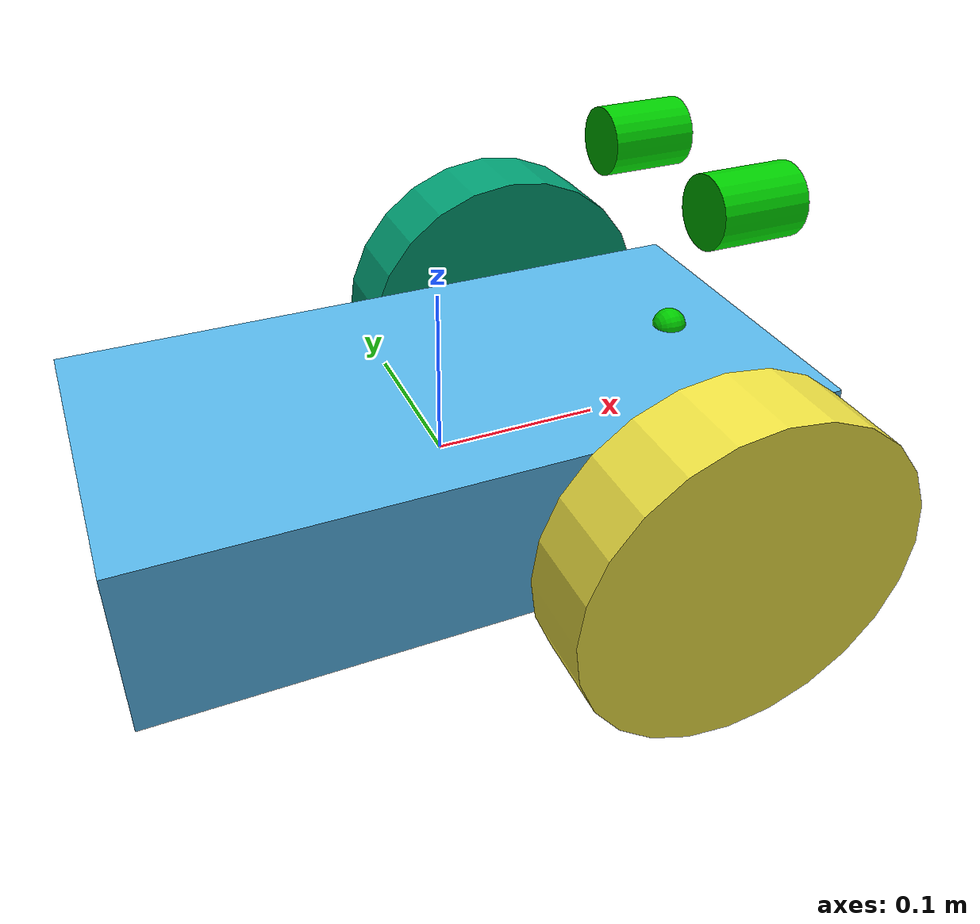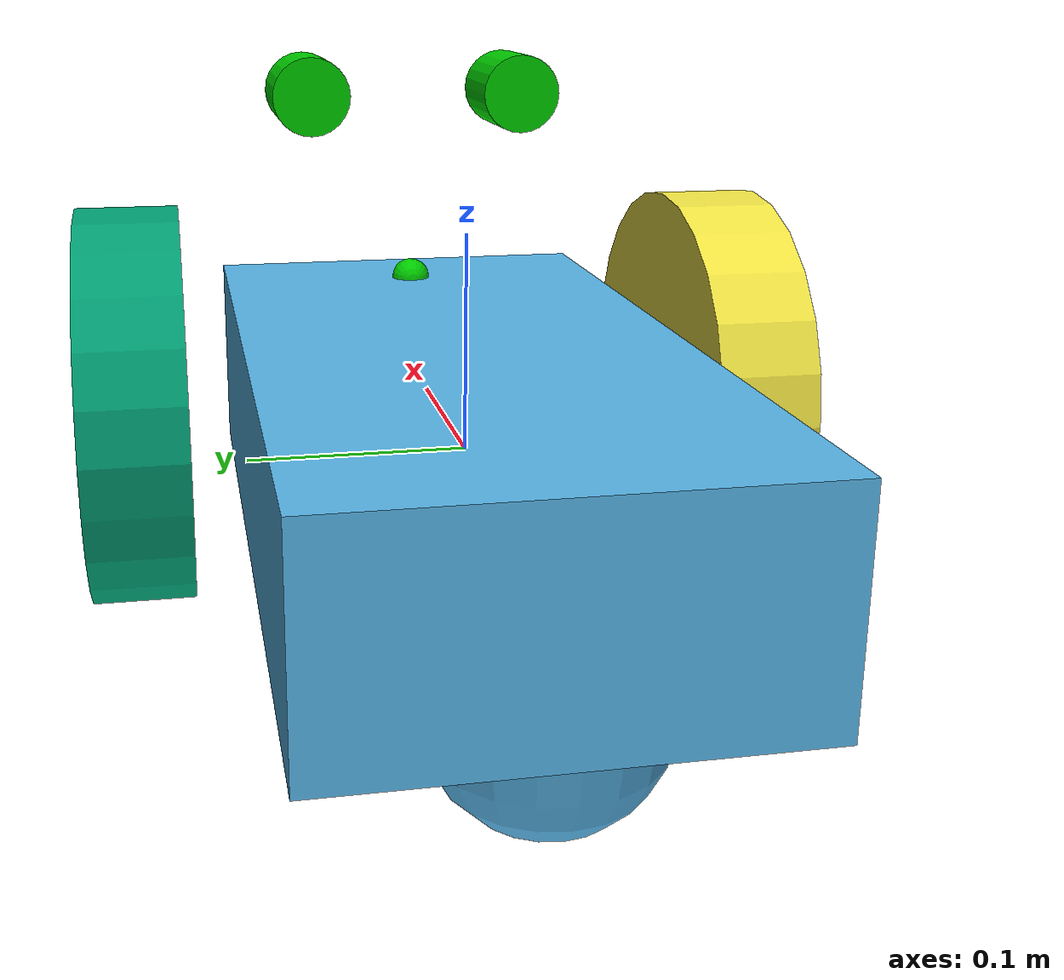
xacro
<?xml version='1.0'?>

<robot name="myrobot" xmlns:xacro="http://www.ros.org/wiki/xacro">
<!-- xmlns:xacro="http://www.ros.org/wiki/xacro is also important dont know why -->

  <xacro:property name="chassis_x" value="0.4"/>
  <xacro:property name="chassis_y" value="0.2"/>
  <xacro:property name="chassis_z" value="0.1"/>
  <xacro:property name="chassis_mass" value="10"/>

  <xacro:property name="wheel_length" value="0.05"/>
  <xacro:property name="wheel_radius" value="0.1"/>
  <xacro:property name="wheel_mass" value="5"/>

  <xacro:property name="cameraRadius" value="0.02"/>
  <xacro:property name="cameraLength" value="0.05"/>
  <xacro:property name="cameraMass" value="0.1"/>

  <!-- Including File containing differential drive gazebo plugin -->
  <xacro:include filename="$(find rsk_bot)/urdf/stereo_bot/plugin.gazebo" />

  <!-- Including file containing materials information (colour) -->
  <xacro:include filename="$(find rsk_bot)/urdf/stereo_bot/materials.xacro" />

  <link name="dummy"> </link>

<!-- ############################## Chassis  ####################################### -->
  <!-- Chassis consists of two links : main_body and caster (spherical wheel) -->

  <link name='chassis'>
    <pose>0 0 0.1 0 0 0</pose>

    <!-- Defining the inertia of whole chassis (main_body+caster) -->
    <inertial>
      <origin xyz="0 0 0.1" rpy=" 0 0 0"/>
      <mass value="${chassis_mass}"/>
      <inertia ixx="${0.0833333 * chassis_mass * (chassis_y*chassis_y + chassis_z*chassis_z)}" ixy="0.0" ixz="0.0"
        iyy="${0.0833333 * chassis_mass * (chassis_x*chassis_x + chassis_z*chassis_z)}" iyz="0.0"
        izz="${0.0833333 * chassis_mass * (chassis_x*chassis_x + chassis_y*chassis_y)}" />
    </inertial>

    <!-- main_body's visual part and collision part is a cuboid  of size=".4 .2 .1" -->
    <visual name='chassis_main_body_visual'>   <!--Visual name must have initials of link name in order to have color in gazebo-->
      <origin xyz="0 0 0" rpy=" 0 0 0"/>
      <geometry>
        <box size="${chassis_x} ${chassis_y} ${chassis_z}"/>
      </geometry>
    </visual>

    <collision name='main_body_collision'>
      <geometry>
        <box size="${chassis_x} ${chassis_y} ${chassis_z}"/>
      </geometry>
    </collision>

    <!-- caster wheel's visual part and collision part is a sphere  of radius="0.05" -->
    <visual name='caster_visual'>
      <origin xyz="-0.15 0 -0.05" rpy=" 0 0 0"/>
      <geometry>
        <sphere radius="0.05"/>
      </geometry>
    </visual>

    <collision name='caster_collision'>
      <origin xyz="-0.15 0 -0.05" rpy=" 0 0 0"/>
      <geometry>
        <sphere radius="0.05"/>
      </geometry>
      <surface>   <!--Defines the surface property-->
        <friction>
          <ode>
            <mu>0</mu>
            <mu2>0</mu2>
            <slip1>1.0</slip1>
            <slip2>1.0</slip2>
          </ode>
        </friction>
      </surface>
    </collision>

  </link>

  <!-- ############################## Left Wheel ####################################### -->

  <link name="left_wheel">
    <!--origin xyz="0.1 0.13 0.1" rpy="0 1.5707 1.5707"/-->
    <collision name="collision">
      <origin xyz="0 0 0" rpy="0 1.5707 1.5707"/>
      <geometry>
        <cylinder radius="${wheel_radius}" length="${wheel_length}"/>
      </geometry>
    </collision>
    <visual name="left_wheel_visual">
      <origin xyz="0 0 0" rpy="0 1.5707 1.5707"/>
      <geometry>
        <cylinder radius="${wheel_radius}" length="${wheel_length}"/>
      </geometry>
    </visual>
    <inertial>
      <origin xyz="0 0 0" rpy="0 1.5707 1.5707"/>
      <mass value="${wheel_mass}"/>
      <cylinder_inertia m="${wheel_mass}" r="${wheel_radius}" h="${wheel_length}"/>
      <inertia ixx="${0.0833333 * wheel_mass * (3 * wheel_radius * wheel_radius + wheel_length * wheel_length)}" ixy="0.0" ixz="0.0"
        iyy="${0.0833333 * wheel_mass * (3 * wheel_radius * wheel_radius + wheel_length * wheel_length)}" iyz="0.0"
        izz="${0.5 * wheel_mass * wheel_radius * wheel_radius}" />
    </inertial>
  </link>

  <!-- ############################## Right Wheel ####################################### -->

  <link name="right_wheel">
    <!--origin xyz="0.1 -0.13 0.1" rpy="0 1.5707 1.5707"/-->
    <collision name="collision">
      <origin xyz="0 0 0" rpy="0 1.5707 1.5707"/>
      <geometry>
        <cylinder radius="${wheel_radius}" length="${wheel_length}"/>
      </geometry>
    </collision>

    <visual name="right_wheel_visual">
      <origin xyz="0 0 0" rpy="0 1.5707 1.5707"/>
      <geometry>
        <cylinder radius="${wheel_radius}" length="${wheel_length}"/>
      </geometry>
    </visual>

    <inertial>
      <origin xyz="0 0 0" rpy="0 1.5707 1.5707"/>
      <mass value="5"/>
      <cylinder_inertia m="${wheel_mass}" r="${wheel_radius}" h="${wheel_length}"/>
      <inertia ixx="${0.0833333 * wheel_mass * (3 * wheel_radius * wheel_radius + wheel_length * wheel_length)}" ixy="0.0" ixz="0.0"
        iyy="${0.0833333 * wheel_mass * (3 * wheel_radius * wheel_radius + wheel_length * wheel_length)}" iyz="0.0"
        izz="${0.5 * wheel_mass * wheel_radius * wheel_radius}" />
    </inertial>
  </link>

  <joint name="dummy_joint" type="fixed">
     <parent link="dummy"/>
     <child link="chassis"/>
   </joint>

  <!-- ############################ Chassis to Left Wheel Joint ########################## -->

  <joint type="continuous" name="left_wheel_hinge">
    <origin xyz="0.1 0.15 0" rpy="0 0 0"/>
    <child link="left_wheel"/>
    <parent link="chassis"/>
    <axis xyz="0 1 0" rpy="0 0 0"/>
    <limit effort="100" velocity="100"/>
    <joint_properties damping="0.0" friction="0.0"/>
  </joint>

  <!-- ############################ Chassis to Right Wheel Joint ########################## -->

  <joint type="continuous" name="right_wheel_hinge">
    <origin xyz="0.1 -0.15 0" rpy="0 0 0"/>
    <child link="right_wheel"/>
    <parent link="chassis"/>
    <axis xyz="0 1 0" rpy="0 0 0"/>
    <limit effort="100" velocity="100"/>
    <joint_properties damping="0.0" friction="0.0"/>
  </joint>

<!-- ############################## Left Camera  ####################################### -->

  <link name="left_camera">

    <inertial>
      <mass value="${cameraMass}" />
      <origin xyz="0 0 0" rpy="0 0 0"/>
      <inertia ixx="1e-6" ixy="0" ixz="0" iyy="1e-6" iyz="0" izz="1e-6" />
    </inertial>

    <visual>
      <origin xyz="0 0 0" rpy="0 1.57075 0"/>
      <geometry>
        <cylinder radius="${cameraRadius}" length="${cameraLength}"/>
      </geometry>
      <material name="green"/>
    </visual>

    <collision>
      <origin xyz="0 0 0" rpy="0 1.57075 0"/>
      <geometry>
        <cylinder radius="${cameraRadius}" length="${cameraLength}"/>
      </geometry>
    </collision>

  </link>

<!-- ############################## Chassis to Left Camera  ####################################### -->

  <joint name="left_camera_joint" type="fixed">
    <axis xyz="0 1 0" />
    <origin xyz="0.15 0.055 0.15" rpy="0 0 0"/>
    <parent link="chassis"/>
    <child link="left_camera"/>
  </joint>

<!-- ############################## Right Camera  ####################################### -->

  <link name="right_camera">

    <inertial>
      <mass value="${cameraMass}" />
      <origin xyz="0 0 0" rpy="0 0 0"/>
      <inertia ixx="1e-6" ixy="0" ixz="0" iyy="1e-6" iyz="0" izz="1e-6" />
    </inertial>

    <visual>
      <origin xyz="0 0 0" rpy="0 1.57075 0"/>
      <geometry>
        <cylinder radius="${cameraRadius}" length="${cameraLength}"/>
      </geometry>
      <material name="green"/>
    </visual>

    <collision>
      <origin xyz="0 0 0" rpy="0 1.57075 0"/>
      <geometry>
        <cylinder radius="${cameraRadius}" length="${cameraLength}"/>
      </geometry>
    </collision>

  </link>

<!-- ############################## Chassis to Right Camera  ####################################### -->

  <joint name="right_camera_joint" type="fixed">
    <axis xyz="0 1 0" />
    <origin xyz="0.15 -0.055 0.15" rpy="0 0 0"/>
    <parent link="chassis"/>
    <child link="right_camera"/>
  </joint>

<!-- ############################## Point cloud (dummy link/frame) ####################################### -->

  <link name="point_cloud">

    <inertial>
      <mass value="0" />
      <origin xyz="0 0 0" rpy="0 0 0"/>
      <inertia ixx="0" ixy="0" ixz="0" iyy="0" iyz="0" izz="0" />
    </inertial>

    <visual>
      <origin xyz="0 0 0" rpy="0 0 0"/>
      <geometry>
        <sphere radius="0.01"/>
      </geometry>
      <material name="green"/>
    </visual>

    <collision>
      <origin xyz="0 0 0" rpy="0 0 0"/>
      <geometry>
        <sphere radius="0.1"/>
      </geometry>
    </collision>

  </link>

<!-- ############################## Chassis to Point cloud  ####################################### -->

  <joint name="point_cloud_joint" type="fixed">
    <axis xyz="0 0 0" />
    <origin xyz="0.15 0 0.05" rpy="4.712389 0 4.712389"/>
    <parent link="chassis"/>
    <child link="point_cloud"/>
  </joint>

</robot>

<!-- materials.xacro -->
<robot>

  <!-- Various materials' property which can be used in the robot -->

  <material name="black">
    <color rgba="0.0 0.0 0.0 1.0"/>
  </material>

  <material name="blue">
    <color rgba="0.0 0.0 0.8 1.0"/>
  </material>

  <material name="green">
    <color rgba="0.0 0.8 0.0 1.0"/>
  </material>

  <material name="grey">
    <color rgba="0.2 0.2 0.2 1.0"/>
  </material>

  <material name="orange">
    <color rgba="${255/255} ${108/255} ${10/255} 1.0"/>
  </material>

  <material name="brown">
    <color rgba="${222/255} ${207/255} ${195/255} 1.0"/>
  </material>

  <material name="red">
    <color rgba="0.8 0.0 0.0 1.0"/>
  </material>

  <material name="white">
    <color rgba="1.0 1.0 1.0 1.0"/>
  </material>

</robot>
